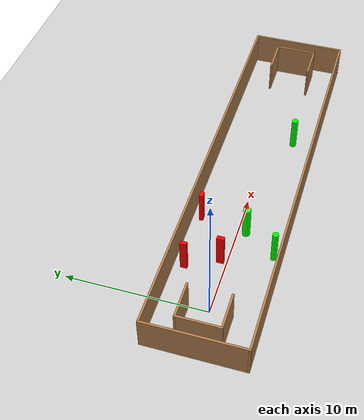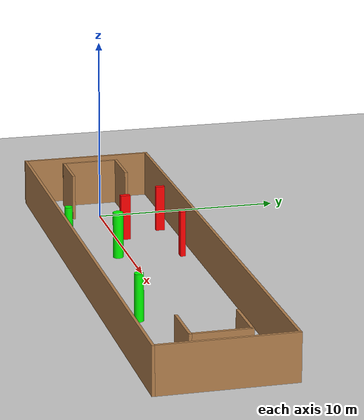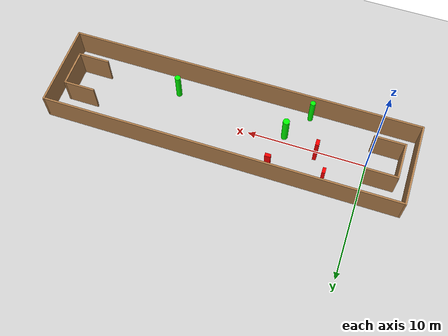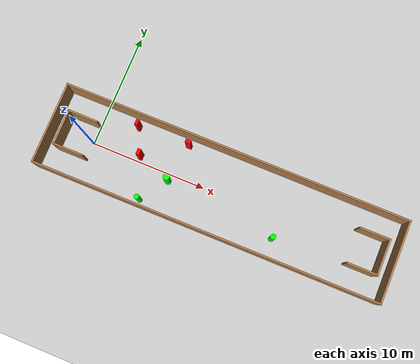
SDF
<sdf version="1.7">
 <world name="default">
  <light name="sun" type="directional">
   <pose>0 0 10 0 -0 0</pose>
   <diffuse>0.8 0.8 0.8 1</diffuse>
   <specular>0.2 0.2 0.2 1</specular>
   <attenuation>
    <range>1000</range>
    <constant>0.9</constant>
    <linear>0.01</linear>
    <quadratic>0.001</quadratic>
   </attenuation>
   <direction>-0.5 0.1 -0.9</direction>
   <spot><inner_angle>0</inner_angle><outer_angle>0</outer_angle><falloff>0</falloff></spot>
  </light>
  <model name="ground_plane">
   <static>1</static>
   <link name="link">
    <collision name="collision">
     <geometry><plane><normal>0 0 1</normal><size>100 100</size></plane></geometry>
     <surface>
      <contact><collide_bitmask>65535</collide_bitmask></contact>
      <friction><ode><mu>100</mu><mu2>50</mu2></ode></friction>
     </surface>
    </collision>
    <visual name="visual">
     <cast_shadows>0</cast_shadows>
     <geometry><plane><normal>0 0 1</normal><size>100 100</size></plane></geometry>
     <material>
      <script><uri>file://media/materials/scripts/gazebo.material</uri><name>Gazebo/Grey</name></script>
     </material>
    </visual>
   </link>
  </model>
  <gravity>0 0 -9.8</gravity>
  <magnetic_field>6e-06 2.3e-05 -4.2e-05</magnetic_field>
  <atmosphere type="adiabatic"/>
  <physics type="ode">
   <max_step_size>0.001</max_step_size>
   <real_time_factor>1</real_time_factor>
   <real_time_update_rate>1000</real_time_update_rate>
  </physics>
  <scene><ambient>0.4 0.4 0.4 1</ambient><background>0.7 0.7 0.7 1</background><shadows>1</shadows></scene>
  <spherical_coordinates>
   <surface_model>EARTH_WGS84</surface_model>
   <latitude_deg>0</latitude_deg>
   <longitude_deg>0</longitude_deg>
   <elevation>0</elevation>
   <heading_deg>0</heading_deg>
  </spherical_coordinates>
  <model name="my_base_walls">
   <link name="Wall_0">
    <collision name="Wall_0_Collision">
     <geometry><box><size>7.15 0.15 2.5</size></box></geometry>
     <pose>0 0 1.25 0 -0 0</pose>
    </collision>
    <visual name="Wall_0_Visual">
     <pose>0 0 1.25 0 -0 0</pose>
     <geometry><box><size>7.15 0.15 2.5</size></box></geometry>
     <material>
      <script><uri>file://media/materials/scripts/gazebo.material</uri><name>Gazebo/Wood</name></script>
      <ambient>1 1 1 1</ambient>
     </material>
     <meta><layer>0</layer></meta>
    </visual>
    <pose>-15 0 0 0 -0 1.5708</pose>
   </link>
   <link name="Wall_10">
    <collision name="Wall_10_Collision">
     <geometry><box><size>2.65 0.15 2.5</size></box></geometry>
     <pose>0 0 1.25 0 -0 0</pose>
    </collision>
    <visual name="Wall_10_Visual">
     <pose>0 0 1.25 0 -0 0</pose>
     <geometry><box><size>2.65 0.15 2.5</size></box></geometry>
     <material>
      <script><uri>file://media/materials/scripts/gazebo.material</uri><name>Gazebo/Wood</name></script>
      <ambient>1 1 1 1</ambient>
     </material>
     <meta><layer>0</layer></meta>
    </visual>
    <pose>-12.75 -1.5 0 0 -0 0</pose>
   </link>
   <link name="Wall_12">
    <collision name="Wall_12_Collision">
     <geometry><box><size>2.65 0.15 2.5</size></box></geometry>
     <pose>0 0 1.25 0 -0 0</pose>
    </collision>
    <visual name="Wall_12_Visual">
     <pose>0 0 1.25 0 -0 0</pose>
     <geometry><box><size>2.65 0.15 2.5</size></box></geometry>
     <material>
      <script><uri>file://media/materials/scripts/gazebo.material</uri><name>Gazebo/Wood</name></script>
      <ambient>1 1 1 1</ambient>
     </material>
     <meta><layer>0</layer></meta>
    </visual>
    <pose>-12.75 1.5 0 0 -0 0</pose>
   </link>
   <link name="Wall_14">
    <collision name="Wall_14_Collision">
     <geometry><box><size>3.15 0.15 2.5</size></box></geometry>
     <pose>0 0 1.25 0 -0 0</pose>
    </collision>
    <visual name="Wall_14_Visual">
     <pose>0 0 1.25 0 -0 0</pose>
     <geometry><box><size>3.15 0.15 2.5</size></box></geometry>
     <material>
      <script><uri>file://media/materials/scripts/gazebo.material</uri><name>Gazebo/Wood</name></script>
      <ambient>1 1 1 1</ambient>
     </material>
     <meta><layer>0</layer></meta>
    </visual>
    <pose>14 0 0 0 -0 -1.5708</pose>
   </link>
   <link name="Wall_15">
    <collision name="Wall_15_Collision">
     <geometry><box><size>2.65 0.15 2.5</size></box></geometry>
     <pose>0 0 1.25 0 -0 0</pose>
    </collision>
    <visual name="Wall_15_Visual">
     <pose>0 0 1.25 0 -0 0</pose>
     <geometry><box><size>2.65 0.15 2.5</size></box></geometry>
     <material>
      <script><uri>file://media/materials/scripts/gazebo.material</uri><name>Gazebo/Wood</name></script>
      <ambient>1 1 1 1</ambient>
     </material>
     <meta><layer>0</layer></meta>
    </visual>
    <pose>12.75 -1.5 0 0 -0 3.14159</pose>
   </link>
   <link name="Wall_17">
    <collision name="Wall_17_Collision">
     <geometry><box><size>2.65 0.15 2.5</size></box></geometry>
     <pose>0 0 1.25 0 -0 0</pose>
    </collision>
    <visual name="Wall_17_Visual">
     <pose>0 0 1.25 0 -0 0</pose>
     <geometry><box><size>2.65 0.15 2.5</size></box></geometry>
     <material>
      <script><uri>file://media/materials/scripts/gazebo.material</uri><name>Gazebo/Wood</name></script>
      <ambient>1 1 1 1</ambient>
     </material>
     <meta><layer>0</layer></meta>
    </visual>
    <pose>12.75 1.5 0 0 -0 3.14159</pose>
   </link>
   <link name="Wall_2">
    <collision name="Wall_2_Collision">
     <geometry><box><size>30.15 0.15 2.5</size></box></geometry>
     <pose>0 0 1.25 0 -0 0</pose>
    </collision>
    <visual name="Wall_2_Visual">
     <pose>0 0 1.25 0 -0 0</pose>
     <geometry><box><size>30.15 0.15 2.5</size></box></geometry>
     <material>
      <script><uri>file://media/materials/scripts/gazebo.material</uri><name>Gazebo/Wood</name></script>
      <ambient>1 1 1 1</ambient>
     </material>
     <meta><layer>0</layer></meta>
    </visual>
    <pose>-0 -3.5 0 0 -0 0</pose>
   </link>
   <link name="Wall_4">
    <collision name="Wall_4_Collision">
     <geometry><box><size>30.15 0.15 2.5</size></box></geometry>
     <pose>0 0 1.25 0 -0 0</pose>
    </collision>
    <visual name="Wall_4_Visual">
     <pose>0 0 1.25 0 -0 0</pose>
     <geometry><box><size>30.15 0.15 2.5</size></box></geometry>
     <material>
      <script><uri>file://media/materials/scripts/gazebo.material</uri><name>Gazebo/Wood</name></script>
      <ambient>1 1 1 1</ambient>
     </material>
     <meta><layer>0</layer></meta>
    </visual>
    <pose>-0 3.5 0 0 -0 0</pose>
   </link>
   <link name="Wall_6">
    <collision name="Wall_6_Collision">
     <geometry><box><size>7.15 0.15 2.5</size></box></geometry>
     <pose>0 0 1.25 0 -0 0</pose>
    </collision>
    <visual name="Wall_6_Visual">
     <pose>0 0 1.25 0 -0 0</pose>
     <geometry><box><size>7.15 0.15 2.5</size></box></geometry>
     <material>
      <script><uri>file://media/materials/scripts/gazebo.material</uri><name>Gazebo/Wood</name></script>
      <ambient>1 1 1 1</ambient>
     </material>
     <meta><layer>0</layer></meta>
    </visual>
    <pose>15 0 0 0 -0 -1.5708</pose>
   </link>
   <link name="Wall_9">
    <collision name="Wall_9_Collision">
     <geometry><box><size>3.15 0.15 2.5</size></box></geometry>
     <pose>0 0 1.25 0 -0 0</pose>
    </collision>
    <visual name="Wall_9_Visual">
     <pose>0 0 1.25 0 -0 0</pose>
     <geometry><box><size>3.15 0.15 2.5</size></box></geometry>
     <material>
      <script><uri>file://media/materials/scripts/gazebo.material</uri><name>Gazebo/Wood</name></script>
      <ambient>1 1 1 1</ambient>
     </material>
     <meta><layer>0</layer></meta>
    </visual>
    <pose>-14 0 0 0 -0 -1.5708</pose>
   </link>
   <static>1</static>
   <pose>11.5 0 0 0 -0 0</pose>
  </model>
  <model name="cylinder1">
   <static>1</static>
   <link name="link">
    <inertial>
     <mass>1</mass>
     <inertia><ixx>0.5</ixx><ixy>0</ixy><ixz>0</ixz><iyy>0.5</iyy><iyz>0</iyz><izz>1</izz></inertia>
    </inertial>
    <collision name="collision">
     <geometry><cylinder><radius>0.2810309963368667</radius><length>2.5</length></cylinder></geometry>
    </collision>
    <visual name="visual">
     <geometry><cylinder><radius>0.2810309963368667</radius><length>2.5</length></cylinder></geometry>
     <material>
      <ambient>0 1 0 1</ambient>
      <diffuse>0 1 0 1</diffuse>
      <specular>0.1 0.1 0.1 1</specular>
      <emissive>0 0 0 0</emissive>
     </material>
    </visual>
   </link>
   <pose>7.046762930529161 -0.5879324128951806 1.25 0 0 0</pose>
  </model>
  <model name="cylinder2">
   <static>1</static>
   <link name="link">
    <inertial>
     <mass>1</mass>
     <inertia><ixx>0.5</ixx><ixy>0</ixy><ixz>0</ixz><iyy>0.5</iyy><iyz>0</iyz><izz>1</izz></inertia>
    </inertial>
    <collision name="collision">
     <geometry><cylinder><radius>0.21745836698627474</radius><length>2.5</length></cylinder></geometry>
    </collision>
    <visual name="visual">
     <geometry><cylinder><radius>0.21745836698627474</radius><length>2.5</length></cylinder></geometry>
     <material>
      <ambient>0 1 0 1</ambient>
      <diffuse>0 1 0 1</diffuse>
      <specular>0.1 0.1 0.1 1</specular>
      <emissive>0 0 0 0</emissive>
     </material>
    </visual>
   </link>
   <pose>5.46306894630967 -2.9341052621166543 1.25 0 0 0</pose>
  </model>
  <model name="cylinder3">
   <static>1</static>
   <link name="link">
    <inertial>
     <mass>1</mass>
     <inertia><ixx>0.5</ixx><ixy>0</ixy><ixz>0</ixz><iyy>0.5</iyy><iyz>0</iyz><izz>1</izz></inertia>
    </inertial>
    <collision name="collision">
     <geometry><cylinder><radius>0.24082537819316419</radius><length>2.5</length></cylinder></geometry>
    </collision>
    <visual name="visual">
     <geometry><cylinder><radius>0.24082537819316419</radius><length>2.5</length></cylinder></geometry>
     <material>
      <ambient>0 1 0 1</ambient>
      <diffuse>0 1 0 1</diffuse>
      <specular>0.1 0.1 0.1 1</specular>
      <emissive>0 0 0 0</emissive>
     </material>
    </visual>
   </link>
   <pose>16.803834944031784 -1.8050699772580363 1.25 0 0 0</pose>
  </model>
  <model name="box1">
   <static>1</static>
   <link name="link">
    <inertial>
     <mass>1</mass>
     <inertia><ixx>0.083</ixx><ixy>0</ixy><ixz>0</ixz><iyy>0.083</iyy><iyz>0</iyz><izz>0.083</izz></inertia>
    </inertial>
    <collision name="collision">
     <geometry><box><size>0.4773088531629444 0.2808601649497229 2.5</size></box></geometry>
    </collision>
    <visual name="visual">
     <geometry><box><size>0.4773088531629444 0.2808601649497229 2.5</size></box></geometry>
     <material>
      <ambient>1 0 0 1</ambient>
      <diffuse>1 0 0 1</diffuse>
      <specular>0.1 0.1 0.1 1</specular>
      <emissive>0 0 0 0</emissive>
     </material>
    </visual>
    <sensor name="my_contact" type="contact">
     <contact><collision>box_collision</collision><topic>__default_topic__</topic></contact>
    </sensor>
   </link>
   <pose>7.574398217170852 2.7946014529018823 1.25 0 0 0</pose>
  </model>
  <model name="box2">
   <static>1</static>
   <link name="link">
    <inertial>
     <mass>1</mass>
     <inertia><ixx>0.083</ixx><ixy>0</ixy><ixz>0</ixz><iyy>0.083</iyy><iyz>0</iyz><izz>0.083</izz></inertia>
    </inertial>
    <collision name="collision">
     <geometry><box><size>0.29482827496417713 0.5291211487839522 2.5</size></box></geometry>
    </collision>
    <visual name="visual">
     <geometry><box><size>0.29482827496417713 0.5291211487839522 2.5</size></box></geometry>
     <material>
      <ambient>1 0 0 1</ambient>
      <diffuse>1 0 0 1</diffuse>
      <specular>0.1 0.1 0.1 1</specular>
      <emissive>0 0 0 0</emissive>
     </material>
    </visual>
    <sensor name="my_contact" type="contact">
     <contact><collision>box_collision</collision><topic>__default_topic__</topic></contact>
    </sensor>
   </link>
   <pose>4.165252531750227 0.4708334537568124 1.25 0 0 0</pose>
  </model>
  <model name="box3">
   <static>1</static>
   <link name="link">
    <inertial>
     <mass>1</mass>
     <inertia><ixx>0.083</ixx><ixy>0</ixy><ixz>0</ixz><iyy>0.083</iyy><iyz>0</iyz><izz>0.083</izz></inertia>
    </inertial>
    <collision name="collision">
     <geometry><box><size>0.26867743485357776 0.48724936364623883 2.5</size></box></geometry>
    </collision>
    <visual name="visual">
     <geometry><box><size>0.26867743485357776 0.48724936364623883 2.5</size></box></geometry>
     <material>
      <ambient>1 0 0 1</ambient>
      <diffuse>1 0 0 1</diffuse>
      <specular>0.1 0.1 0.1 1</specular>
      <emissive>0 0 0 0</emissive>
     </material>
    </visual>
    <sensor name="my_contact" type="contact">
     <contact><collision>box_collision</collision><topic>__default_topic__</topic></contact>
    </sensor>
   </link>
   <pose>3.071418931905752 2.696334647847742 1.25 0 0 0</pose>
  </model>
 </world>
</sdf>
